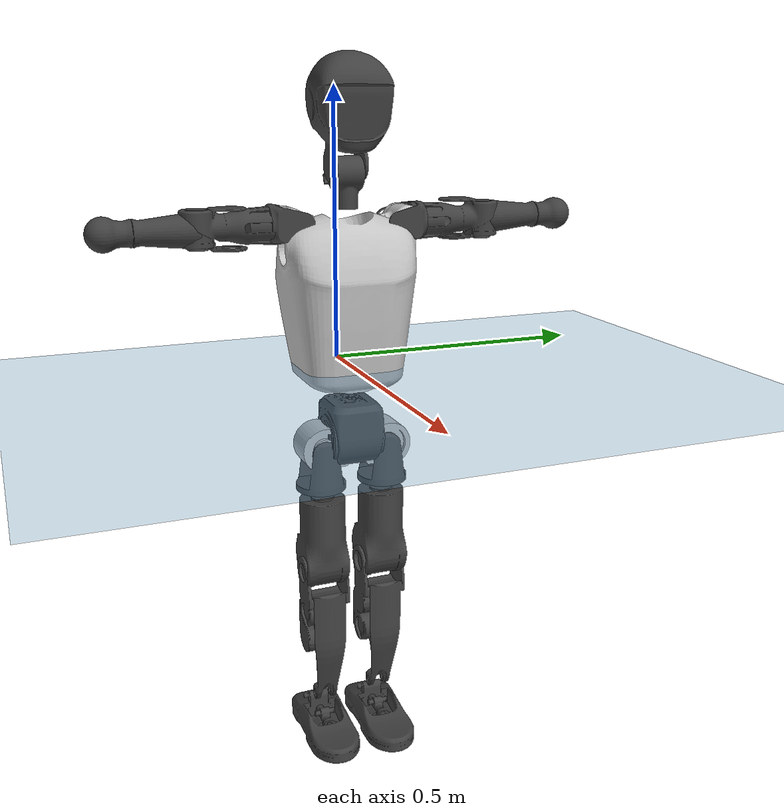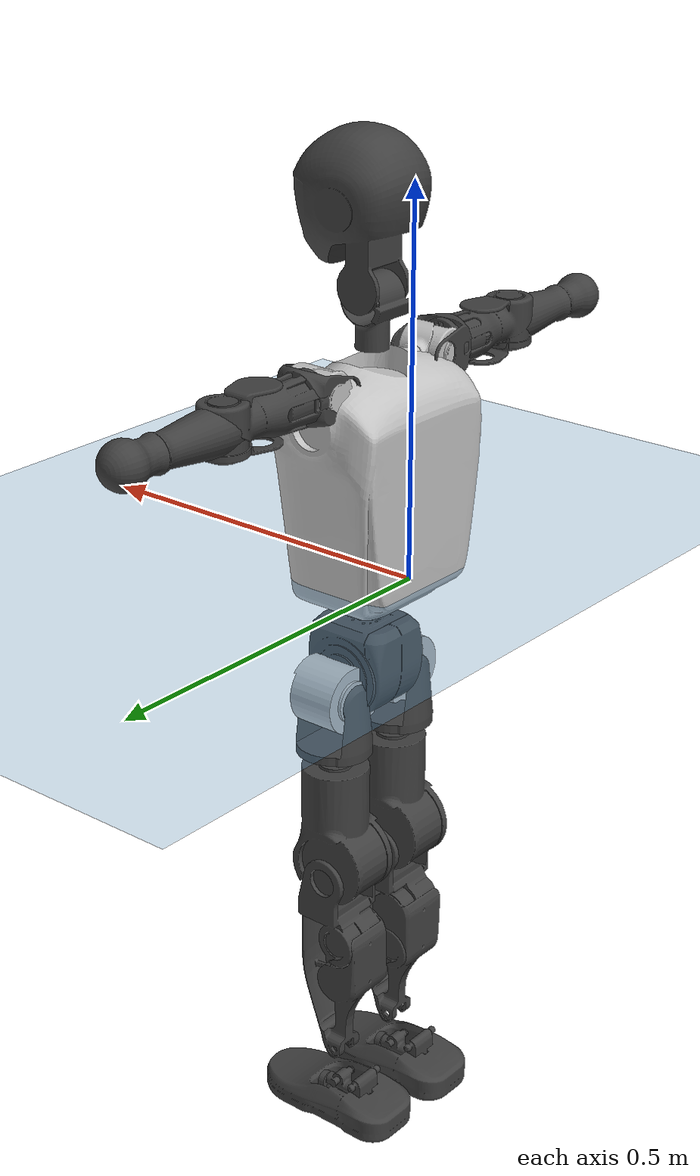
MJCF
<mujoco model="T1">
  <compiler angle="radian" assetdir="assets" balanceinertia="true" inertiafromgeom="false"/>

  <option timestep="0.005" density="1.2" viscosity="2e-05"/>

  <size nkey="1"/>

  <visual>
    <quality shadowsize="8192"/>
    <map shadowclip="0.5"/>
  </visual>

  <default>
    <default class="/">
      <joint armature="0.01" damping="0.01" frictionloss="0.1"/>
      <geom contype="0" conaffinity="0" group="1" solref="-1000 -80"/>
      <site size="0.01 0.005 0.005" group="5"/>
      <general forcelimited="true" biastype="affine" gainprm="25" biasprm="0 -25 -0.6"/>
      <default class="t1">
        <geom rgba="0.25 0.25 0.25 1"/>
        <default class="visual">
          <geom type="mesh" group="2"/>
        </default>
        <default class="collision">
          <geom group="3"/>
        </default>
        <default class="foot">
          <geom size="0.1115 0.05 0.015" type="box" condim="6" group="4" priority="1" solimp="0.015 1 0.015"/>
        </default>
        <default class="reward_collision_sphere">
          <geom group="5" rgba="1 0 0 1"/>
        </default>
      </default>
    </default>
  </default>

  <asset>
    <texture type="skybox" colorspace="auto" name="//unnamed_texture_0" builtin="gradient" rgb1="0.95 0.95 0.95" rgb2="0.95 0.95 0.95" width="100" height="600"/>
    <texture type="2d" colorspace="auto" name="texplane" builtin="checker" rgb1="0.345 0.575 0.748" rgb2="0.345 0.575 0.748" markrgb="1 1 1" width="512" height="512"/>
    <material name="MatPlane" class="/" texture="texplane" texuniform="true" texrepeat="2 2" specular="0.9"/>
    <mesh name="Trunk" class="/" file="Trunk.stl"/>
    <mesh name="H1" class="/" file="H1.stl"/>
    <mesh name="H2" class="/" file="H2.stl"/>
    <mesh name="AL1" class="/" file="AL1.stl"/>
    <mesh name="AL2" class="/" file="AL2.stl"/>
    <mesh name="AL3" class="/" file="AL3.stl"/>
    <mesh name="left_hand_link" class="/" file="left_hand_link.stl"/>
    <mesh name="AR1" class="/" file="AR1.stl"/>
    <mesh name="AR2" class="/" file="AR2.stl"/>
    <mesh name="AR3" class="/" file="AR3.stl"/>
    <mesh name="right_hand_link" class="/" file="right_hand_link.stl"/>
    <mesh name="Waist" class="/" file="Waist.stl"/>
    <mesh name="Hip_Pitch_Left" class="/" file="Hip_Pitch_Left.stl"/>
    <mesh name="Hip_Roll_Left" class="/" file="Hip_Roll_Left.stl"/>
    <mesh name="Hip_Yaw_Left" class="/" file="Hip_Yaw_Left.stl"/>
    <mesh name="Shank_Left" class="/" file="Shank_Left.stl"/>
    <mesh name="Ankle_Cross_Left" class="/" file="Ankle_Cross_Left.stl"/>
    <mesh name="left_foot_link" class="/" file="left_foot_link.stl"/>
    <mesh name="Hip_Pitch_Right" class="/" file="Hip_Pitch_Right.stl"/>
    <mesh name="Hip_Roll_Right" class="/" file="Hip_Roll_Right.stl"/>
    <mesh name="Hip_Yaw_Right" class="/" file="Hip_Yaw_Right.stl"/>
    <mesh name="Shank_Right" class="/" file="Shank_Right.stl"/>
    <mesh name="Ankle_Cross_Right" class="/" file="Ankle_Cross_Right.stl"/>
    <mesh name="right_foot_link" class="/" file="right_foot_link.stl"/>
  </asset>

  <worldbody>
    <geom name="floor" class="/" size="100 100 0.125" type="plane" group="0" material="MatPlane"/>
    <light name="toplight_shadow" class="/" pos="0 0 5" dir="0.0990148 0.0990148 -0.990148" type="directional" ambient="0.04 0.04 0.04" diffuse="0.55 0.55 0.55" specular="0.12 0.12 0.12"/>
    <light name="toplight_fill" class="/" pos="0 0 5" dir="0.0990148 0.0990148 -0.990148" type="directional" castshadow="false" ambient="0.04 0.04 0.04" diffuse="0.3 0.3 0.3" specular="0.08 0.08 0.08"/>
    <body name="trunk" childclass="t1" pos="-0.000369973 0.00224283 5.43401e-05" quat="1 3.55484e-05 3.2202e-05 0.000187411">
      <inertial pos="0.0521013 -0.00142848 0.126031" quat="0.99994 0.0017578 -0.00850096 -0.00661484" mass="9.19315" diaginertia="0.0862241 0.00544075 0.12673"/>
      <joint name="//unnamed_joint_0" type="free" armature="0" damping="0" frictionloss="0"/>
      <geom name="//unnamed_geom_1" class="visual" rgba="0.76 0.76 0.76 1" mesh="Trunk"/>
      <geom name="//unnamed_geom_2" class="collision" size="0.0694636 0.0926182 0.138927" pos="0.0594545 0 0.143016" type="box"/>
      <geom name="//unnamed_geom_3" class="reward_collision_sphere" size="0.106511" pos="0.0594545 0 0.11918"/>
      <geom name="//unnamed_geom_4" class="reward_collision_sphere" size="0.0138927" pos="0.0594545 0.0506459 0"/>
      <geom name="//unnamed_geom_5" class="reward_collision_sphere" size="0.0138927" pos="0.0594545 -0.0506459 0"/>
      <geom name="//unnamed_geom_6" class="reward_collision_sphere" size="0.0138927" pos="0.0594545 0.0637543 0.214524"/>
      <geom name="//unnamed_geom_7" class="reward_collision_sphere" size="0.0138927" pos="0.0594545 -0.0637543 0.214524"/>
      <site name="imu" pos="-0.000217895 -0.00604645 -0.0122348" size="0.00926182"/>
      <camera name="track" pos="0 -1.19167 0" quat="0.707107 0.707107 0 0" mode="trackcom"/>
      <camera name="ego_camera" pos="0.120891 0 0.500557" quat="-0.5 -0.5 0.5 0.5"/>
      <body name="H1" pos="0.0619191 -0.00199099 0.287097" quat="1 0.000144968 -0.000383076 -0.000285672">
        <inertial pos="0.000326263 -0.00361764 0.0707878" quat="0.764163 -0.000221832 0.00388163 0.645011" mass="0.348223" diaginertia="0.00021819 1.66741e-05 0.000337197"/>
        <joint name="AAHead_yaw" pos="0 0 0" axis="0.0131614 0.00277931 0.99991" range="-1.52079 1.51567" armature="0.00921421" damping="0.00249691" frictionloss="0.0872109"/>
        <geom name="//unnamed_geom_8" class="visual" mesh="H1"/>
        <body name="H2" pos="-0.000832922 -5.44861e-06 0.0777925" quat="0.999998 -0.000635178 -0.000121175 -0.00172775">
          <inertial pos="0.00488999 0.001298 0.117612" quat="0.988187 0.103312 -0.077382 -0.0826122" mass="0.502243" diaginertia="0.00193591 0.000139622 0.00428862"/>
          <joint name="Head_pitch" pos="0 0 0" axis="0.000156107 -1 -0.000811775" range="-1.17219 0.33228" armature="0.00900745" damping="0.0132148" frictionloss="0.0901979"/>
          <geom name="//unnamed_geom_9" class="visual" mesh="H2"/>
          <geom name="//unnamed_geom_10" class="collision" size="0.0740945" pos="0.00990908 0 0.131098"/>
          <geom name="//unnamed_geom_11" class="reward_collision_sphere" size="0.0833563" pos="0.0198182 0 0.11918"/>
        </body>
      </body>
      <body name="AL1" pos="0.056915 0.0622312 0.260244" quat="1 3.44762e-06 0.000471312 6.14302e-05">
        <inertial pos="0.00173826 0.0251351 -0.00024385" quat="0.506377 0.489421 -0.50313 0.500909" mass="0.422913" diaginertia="0.00126654 9.62706e-05 0.000700479"/>
        <joint name="Left_Shoulder_Pitch" pos="0 0 0" axis="-0.00895118 0.999959 0.00122144" range="-3.35335 1.20708" armature="0.00889829" damping="0" frictionloss="0.0822552"/>
        <geom name="//unnamed_geom_12" class="visual" rgba="0.76 0.76 0.76 1" mesh="AL1"/>
        <body name="AL2" pos="-0.000252289 0.0270292 0.000644145" quat="1 -0.000675242 0.000488852 -0.000209214">
          <inertial pos="0.000635655 0.0243703 -0.000223342" quat="0.486901 0.505001 -0.492325 0.515283" mass="0.130036" diaginertia="0.000393851 2.61414e-05 0.000444127"/>
          <joint name="Left_Shoulder_Roll" pos="0 0 0" axis="-0.999998 0.000654809 -0.00185821" range="-1.58156 1.69282" armature="0.00971065" damping="0.0072584" frictionloss="0.0856472"/>
          <geom name="//unnamed_geom_13" class="visual" mesh="AL2"/>
          <body name="AL3" pos="-0.000791537 0.0336672 -0.00151472" quat="1 0.000308527 0.000473152 0.00032744">
            <inertial pos="-0.00229641 0.0530315 0.00177959" quat="0.695725 0.718255 -0.00718493 -0.00505881" mass="0.774112" diaginertia="0.0113871 0.000876839 0.00143606"/>
            <joint name="Left_Elbow_Pitch" pos="0 0 0" axis="-0.00214224 -0.9999 -0.014006" stiffness="0.00761723" range="-2.2779 2.21057" armature="0.00894942" damping="0.00972946" frictionloss="0.0788954"/>
            <geom name="//unnamed_geom_14" class="visual" mesh="AL3"/>
            <geom name="//unnamed_geom_15" class="collision" size="0.0277854 0.0694636" pos="0 0.0297917 0" quat="0.707105 0.707108 0 0" type="cylinder"/>
            <geom name="//unnamed_geom_16" class="reward_collision_sphere" size="0.0333425"/>
            <body name="left_hand_link" pos="-0.00117569 0.0900681 0.00159219" quat="0.999999 0.000863951 -0.000751203 0.000747361">
              <inertial pos="-0.00238463 0.0656667 0.000633986" quat="0.704585 0.709524 -0.00687397 0.00938905" mass="0.251799" diaginertia="0.00750482 0.000605269 0.000519863"/>
              <joint name="Left_Elbow_Yaw" pos="0 0 0" axis="0.00372795 0.00160825 0.999992" stiffness="0.011092" range="-2.48126 -0.057036" armature="0.00945557" damping="0.0129654" frictionloss="0.10135"/>
              <geom name="//unnamed_geom_17" class="visual" mesh="left_hand_link"/>
              <geom name="//unnamed_geom_18" class="collision" size="0.0277854 0.0810409" pos="0 0.0774585 0" quat="0.707105 0.707108 0 0" type="cylinder"/>
              <geom name="//unnamed_geom_19" class="reward_collision_sphere" size="0.0463091"/>
              <geom name="//unnamed_geom_20" class="reward_collision_sphere" size="0.0324164" pos="0 0.0655418 0"/>
              <geom name="//unnamed_geom_21" class="reward_collision_sphere" size="0.0324164" pos="0 0.128104 0"/>
            </body>
          </body>
        </body>
      </body>
      <body name="AR1" pos="0.0540981 -0.0634123 0.262627" quat="1 1.16358e-05 0.000418126 -1.41107e-06">
        <inertial pos="-0.00150937 -0.0258419 -0.000552716" quat="0.503937 0.485445 -0.50678 0.503552" mass="0.429704" diaginertia="0.0013122 9.46542e-05 0.000706201"/>
        <joint name="Right_Shoulder_Pitch" pos="0 0 0" axis="-0.00271464 -0.999872 0.015782" range="-1.23047 3.2684" armature="0.00825621" damping="0.0168501" frictionloss="0.103869"/>
        <geom name="//unnamed_geom_22" class="visual" rgba="0.76 0.76 0.76 1" mesh="AR1"/>
        <body name="AR2" pos="-0.00340464 -0.0263406 0.00227736" quat="1 0.000114498 0.000173722 0.000102455">
          <inertial pos="0.00399853 -0.0232363 0.00237644" quat="0.502739 0.487291 -0.521267 0.487937" mass="0.120529" diaginertia="0.000377196 2.46712e-05 0.000411965"/>
          <joint name="Right_Shoulder_Roll" pos="0 0 0" axis="-0.999995 -0.00147297 -0.00268468" stiffness="0.00218163" range="-1.75954 1.57627" armature="0.00830554" damping="0.00611746" frictionloss="0.090369"/>
          <geom name="//unnamed_geom_23" class="visual" mesh="AR2"/>
          <body name="AR3" pos="0.0010182 -0.0338701 -0.00226807" quat="1 8.62874e-05 0.000875233 -0.00012264">
            <inertial pos="0.000570299 -0.0510085 0.000122376" quat="0.711108 0.703006 0.0100773 0.00263912" mass="0.767766" diaginertia="0.0116375 0.000915226 0.00143004"/>
            <joint name="Right_Elbow_Pitch" pos="0 0 0" axis="0.00239686 0.999997 0.000121514" stiffness="0.021371" range="-2.268 2.2876" armature="0.00895666" damping="0" frictionloss="0.0952822"/>
            <geom name="//unnamed_geom_24" class="visual" mesh="AR3"/>
            <geom name="//unnamed_geom_25" class="collision" size="0.0277854 0.0694636" pos="0 -0.0297917 0" quat="0.707105 0.707108 0 0" type="cylinder"/>
            <geom name="//unnamed_geom_26" class="reward_collision_sphere" size="0.0333425"/>
            <body name="right_hand_link" pos="0.000673207 -0.0891123 -0.00318067" quat="1 8.56675e-06 -9.57351e-06 -1.4035e-05">
              <inertial pos="-0.00213136 -0.0660822 0.00348918" quat="0.707209 0.706986 1.86407e-05 0.00516729" mass="0.266039" diaginertia="0.00784467 0.000587955 0.000505224"/>
              <joint name="Right_Elbow_Yaw" pos="0 0 0" axis="-0.000584856 0.00314461 0.999995" range="0.0502467 2.41719" armature="0.00839982" damping="0.00123552" frictionloss="0.0879929"/>
              <geom name="//unnamed_geom_27" class="visual" mesh="right_hand_link"/>
              <geom name="//unnamed_geom_28" class="collision" size="0.0277854 0.0810409" pos="0 -0.0774585 0" quat="0.707105 0.707108 0 0" type="cylinder"/>
              <geom name="//unnamed_geom_29" class="reward_collision_sphere" size="0.0463091"/>
              <geom name="//unnamed_geom_30" class="reward_collision_sphere" size="0.0324164" pos="0 -0.0655418 0"/>
              <geom name="//unnamed_geom_31" class="reward_collision_sphere" size="0.0324164" pos="0 -0.128104 0"/>
            </body>
          </body>
        </body>
      </body>
      <body name="Waist" pos="0.0662044 0.00111596 -0.134978" quat="1 1.62234e-05 -0.000119435 8.77413e-05">
        <inertial pos="0.00414623 -0.000200522 0.0109397" quat="0.983603 -9.50311e-05 -0.180309 0.00376069" mass="2.14881" diaginertia="0.00526485 0.000416212 0.011554"/>
        <joint name="Waist" pos="0 0 0" axis="0.00332291 0.00506365 0.999982" range="-1.55567 1.57855" armature="0.0105733" damping="0" frictionloss="0.103071"/>
        <geom name="//unnamed_geom_32" class="visual" mesh="Waist"/>
        <body name="Hip_Pitch_Left" pos="0.00341221 0.0651028 -0.000611631" quat="1 9.15451e-05 -0.000107662 -3.42622e-05">
          <inertial pos="0.000941251 -0.00757834 -0.0215007" quat="0.97723 0.211801 0.0126937 0.000184537" mass="0.812306" diaginertia="0.00162913 0.000102811 0.00285626"/>
          <joint name="Left_Hip_Pitch" pos="0 0 0" axis="-0.00537094 0.999853 0.0162687" stiffness="0.0130709" range="-1.84238 1.62347" armature="0.00802286" damping="0.01406" frictionloss="0.104249"/>
          <geom name="//unnamed_geom_33" class="visual" rgba="0.76 0.76 0.76 1" mesh="Hip_Pitch_Left"/>
          <body name="Hip_Roll_Left" pos="-0.00157235 -0.00138756 -0.0227099" quat="0.999998 -0.00157645 -0.000822467 0.00036802">
            <inertial pos="0.00288448 0.000315838 -0.0614232" quat="0.715776 -0.0150324 -0.000805772 0.698168" mass="0.315898" diaginertia="0.00172968 0.000120004 0.00123076"/>
            <joint name="Left_Hip_Roll" pos="0 0 0" axis="-0.999835 -0.0173498 -0.00536794" range="-1.57375 0.164426" armature="0.00859055" damping="0.0206819" frictionloss="0.0888554"/>
            <geom name="//unnamed_geom_34" class="visual" mesh="Hip_Roll_Left"/>
            <geom name="//unnamed_geom_35" class="reward_collision_sphere" size="0.05094"/>
            <body name="Hip_Yaw_Left" pos="-0.00409099 -0.000681461 -0.0988419" quat="0.999999 -0.000748202 -4.47734e-05 0.00074071">
              <inertial pos="-0.00461778 -0.00280123 -0.108251" quat="0.700606 -0.0310174 -0.0231177 0.712498" mass="1.65955" diaginertia="0.0235968 0.00183596 0.00603456"/>
              <joint name="Left_Hip_Yaw" pos="0 0 0" axis="0.00908191 0.00236277 -0.999956" range="-0.958534 1.0529" armature="0.0100006" damping="0" frictionloss="0.10231"/>
              <geom name="//unnamed_geom_36" class="visual" mesh="Hip_Yaw_Left"/>
              <geom name="//unnamed_geom_37" class="collision" size="0.0463091 0.0740945" type="cylinder"/>
              <body name="Shank_Left" pos="-0.0106536 -0.00123435 -0.157307" quat="1 -7.71567e-05 0.00019609 7.28144e-05">
                <inertial pos="-0.00654518 0.00128475 -0.147422" quat="0.998152 0.0044817 -0.0267852 0.0543589" mass="1.37966" diaginertia="0.0330596 0.00264536 0.00474359"/>
                <joint name="Left_Knee_Pitch" pos="0 0 0" axis="0.000433465 0.999998 0.00176096" stiffness="0.00449469" range="0.0320597 2.38675" armature="0.00880777" damping="0.0138637" frictionloss="0.0988742"/>
                <geom name="//unnamed_geom_38" class="visual" mesh="Shank_Left"/>
                <geom name="//unnamed_geom_39" class="collision" size="0.0463091 0.0694636" pos="0 0 -0.143016" type="cylinder"/>
                <geom name="//unnamed_geom_40" class="reward_collision_sphere" size="0.0602018"/>
                <body name="Ankle_Cross_Left" pos="0.000373788 0.000431859 -0.336343" quat="1 -0.000586448 0.000674041 -0.000298144">
                  <inertial pos="-0.00324076 0.00261455 -0.0113605" quat="0.445407 0.551567 0.550722 0.440559" mass="0.0549838" diaginertia="2.75221e-05 1.80899e-06 2.64223e-05"/>
                  <joint name="Left_Ankle_Pitch" pos="0 0 0" axis="0.00335529 0.999929 0.0114418" stiffness="0.00225843" range="-0.924106 0.402028" armature="0.00941269" damping="0.0174539" frictionloss="0.0903693"/>
                  <geom name="//unnamed_geom_41" class="visual" mesh="Ankle_Cross_Left"/>
                  <body name="left_foot_link" pos="0.000448071 0.002221 -0.0158005" quat="0.999999 -0.000971038 -0.000380574 -0.000160603">
                    <inertial pos="0.00225814 -0.000297027 -0.0102068" quat="0.00161581 0.616763 0.00146456 0.787146" mass="0.575774" diaginertia="0.00253656 0.000188978 0.00557704"/>
                    <joint name="Left_Ankle_Roll" pos="0 0 0" axis="-0.999974 -0.000228351 -0.00717039" stiffness="0.00864025" range="-0.494857 0.394877" armature="0.00791322" damping="0.00985371" frictionloss="0.104577"/>
                    <geom name="//unnamed_geom_42" class="visual" mesh="left_foot_link"/>
                    <geom name="left_foot" class="foot" size="0.095273 0.051813 0.0127587" pos="0.00990908 0 -0.017877"/>
                    <geom name="//unnamed_geom_44" class="reward_collision_sphere" size="0.0481614" pos="0.00990908 0 -0.017877"/>
                    <geom name="//unnamed_geom_45" class="reward_collision_sphere" size="0.0277854" pos="0.0941362 -0.0137042 -0.017877"/>
                    <geom name="//unnamed_geom_46" class="reward_collision_sphere" size="0.0277854" pos="-0.0693635 -0.0137042 -0.017877"/>
                    <site name="left_foot" class="foot" pos="0.00990908 0 -0.017877" size="0.00926182"/>
                  </body>
                </body>
              </body>
            </body>
          </body>
        </body>
        <body name="Hip_Pitch_Right" pos="-0.000781875 -0.0604587 0.000417092" quat="0.999999 -0.000728125 -0.000440878 0.000704645">
          <inertial pos="0.00181653 0.00631596 -0.0216206" quat="0.973566 -0.227205 0.0229693 -0.00439078" mass="0.765728" diaginertia="0.00169777 0.000107539 0.00293064"/>
          <joint name="Right_Hip_Pitch" pos="0 0 0" axis="-0.0101133 -0.999879 0.0118041" range="-1.52081 1.76672" armature="0.00738764" damping="0.0157976" frictionloss="0.0831983"/>
          <geom name="//unnamed_geom_47" class="visual" rgba="0.76 0.76 0.76 1" mesh="Hip_Pitch_Right"/>
          <body name="Hip_Roll_Right" pos="0.0013245 -0.00115279 -0.0269994" quat="0.999999 0.000920939 0.000330386 -0.000323863">
            <inertial pos="0.000891423 0.00226146 -0.0642297" quat="0.708491 -0.0132131 -0.00398927 0.705585" mass="0.329388" diaginertia="0.00178201 0.000119091 0.00130148"/>
            <joint name="Right_Hip_Roll" pos="0 0 0" axis="-0.999821 0.00613186 -0.0178957" range="-0.220218 1.56799" armature="0.0095632" damping="0.0202638" frictionloss="0.0928951"/>
            <geom name="//unnamed_geom_48" class="visual" mesh="Hip_Roll_Right"/>
            <geom name="//unnamed_geom_49" class="reward_collision_sphere" size="0.05094"/>
            <body name="Hip_Yaw_Right" pos="-0.00022705 0.00216549 -0.0985462" quat="1 -3.25209e-05 2.23788e-05 -3.4872e-05">
              <inertial pos="-0.00727356 0.0034403 -0.10414" quat="0.705487 -0.0311475 -0.0344126 0.707201" mass="1.84221" diaginertia="0.0260441 0.00201008 0.00632178"/>
              <joint name="Right_Hip_Yaw" pos="0 0 0" axis="-0.0084943 0.000248844 -0.999964" range="-1.03865 0.990351" armature="0.00822566" damping="0.021209" frictionloss="0.0913627"/>
              <geom name="//unnamed_geom_50" class="visual" mesh="Hip_Yaw_Right"/>
              <geom name="//unnamed_geom_51" class="collision" size="0.0463091 0.0740945" type="cylinder"/>
              <body name="Shank_Right" pos="-0.0122308 0.00219698 -0.158785" quat="1 -5.47271e-05 0.0001672 -5.19597e-05">
                <inertial pos="-0.00503451 0.000109767 -0.148555" quat="0.999488 0.00820847 -0.0205641 -0.0231135" mass="1.43961" diaginertia="0.0354946 0.00255339 0.00475951"/>
                <joint name="Right_Knee_Pitch" pos="0 0 0" axis="0.0138588 -0.999852 -0.0102366" stiffness="0.00808502" range="-2.30103 0.0429283" armature="0.00925966" damping="0.0181255" frictionloss="0.0904958"/>
                <geom name="//unnamed_geom_52" class="visual" mesh="Shank_Right"/>
                <geom name="//unnamed_geom_53" class="collision" size="0.0463091 0.0694636" pos="0 0 -0.143016" type="cylinder"/>
                <geom name="//unnamed_geom_54" class="reward_collision_sphere" size="0.0602018"/>
                <body name="Ankle_Cross_Right" pos="-0.00293794 -0.000193302 -0.332377" quat="1 0.000153911 -8.51562e-05 -0.000154821">
                  <inertial pos="-0.00628708 -0.000813587 -0.00732192" quat="0.442733 0.5584 0.551938 0.433061" mass="0.0594559" diaginertia="2.93973e-05 1.95547e-06 2.86418e-05"/>
                  <joint name="Right_Ankle_Pitch" pos="0 0 0" axis="0.00289702 -0.999992 -0.00279808" stiffness="0.00382363" range="-0.33819 0.918999" armature="0.00911061" damping="0.00491128" frictionloss="0.0941821"/>
                  <geom name="//unnamed_geom_55" class="visual" mesh="Ankle_Cross_Right"/>
                  <body name="right_foot_link" pos="-0.000956074 -0.000167641 -0.0130744" quat="0.999999 -0.000567341 7.25098e-05 0.00106883">
                    <inertial pos="0.00350708 -0.000507664 -0.0111609" quat="-0.000305553 0.619325 -0.0019174 0.785133" mass="0.544119" diaginertia="0.00250099 0.000173017 0.00505134"/>
                    <joint name="Right_Ankle_Roll" pos="0 0 0" axis="-1 0.000114973 0.00065181" stiffness="0.000356501" range="-0.486131 0.453044" armature="0.0102358" damping="0" frictionloss="0.0907756"/>
                    <geom name="//unnamed_geom_56" class="visual" mesh="right_foot_link"/>
                    <geom name="right_foot" class="foot" size="0.100268 0.0465968 0.0144716" pos="0.00990908 0 -0.017877"/>
                    <geom name="//unnamed_geom_58" class="reward_collision_sphere" size="0.0370473"/>
                    <geom name="//unnamed_geom_59" class="reward_collision_sphere" size="0.0277854" pos="0.00990908 0 -0.017877"/>
                    <geom name="//unnamed_geom_60" class="reward_collision_sphere" size="0.0277854" pos="0.0941362 0.0137042 -0.017877"/>
                    <geom name="//unnamed_geom_61" class="reward_collision_sphere" size="0.0277854" pos="-0.0693635 0.0137042 -0.017877"/>
                    <site name="right_foot" class="foot" pos="0.00990908 0 -0.017877" size="0.00926182"/>
                  </body>
                </body>
              </body>
            </body>
          </body>
        </body>
      </body>
    </body>
  </worldbody>

  <contact>
    <pair class="/" geom1="floor" geom2="left_foot" name="//unnamed_contact_0"/>
    <pair class="/" geom1="floor" geom2="right_foot" name="//unnamed_contact_1"/>
  </contact>

  <actuator>
    <general name="AAHead_yaw" class="/" joint="AAHead_yaw" forcerange="-6.65989 6.65989" gainprm="24.0288" biasprm="0 -24.0288 -0.528673"/>
    <general name="Head_pitch" class="/" joint="Head_pitch" forcerange="-6.57285 6.57285" gainprm="24.0288" biasprm="0 -24.0288 -0.528673"/>
    <general name="Left_Shoulder_Pitch" class="/" joint="Left_Shoulder_Pitch" forcerange="-15.0234 15.0234" gainprm="24.0288" biasprm="0 -24.0288 -0.528673"/>
    <general name="Left_Shoulder_Roll" class="/" joint="Left_Shoulder_Roll" forcerange="-17.4177 17.4177" gainprm="24.0288" biasprm="0 -24.0288 -0.528673"/>
    <general name="Left_Elbow_Pitch" class="/" joint="Left_Elbow_Pitch" forcerange="-15.5186 15.5186" gainprm="24.0288" biasprm="0 -24.0288 -0.528673"/>
    <general name="Left_Elbow_Yaw" class="/" joint="Left_Elbow_Yaw" forcerange="-16.1054 16.1054" gainprm="24.0288" biasprm="0 -24.0288 -0.528673"/>
    <general name="Right_Shoulder_Pitch" class="/" joint="Right_Shoulder_Pitch" forcerange="-18.4225 18.4225" gainprm="24.0288" biasprm="0 -24.0288 -0.528673"/>
    <general name="Right_Shoulder_Roll" class="/" joint="Right_Shoulder_Roll" forcerange="-17.0834 17.0834" gainprm="24.0288" biasprm="0 -24.0288 -0.528673"/>
    <general name="Right_Elbow_Pitch" class="/" joint="Right_Elbow_Pitch" forcerange="-15.3355 15.3355" gainprm="24.0288" biasprm="0 -24.0288 -0.528673"/>
    <general name="Right_Elbow_Yaw" class="/" joint="Right_Elbow_Yaw" forcerange="-18.2024 18.2024" gainprm="24.0288" biasprm="0 -24.0288 -0.528673"/>
    <general name="Waist" class="/" joint="Waist" forcerange="-25.6864 25.6864" gainprm="24.0288" biasprm="0 -24.0288 -0.528673"/>
    <general name="Left_Hip_Pitch" class="/" joint="Left_Hip_Pitch" forcerange="-37.649 37.649" gainprm="24.0288" biasprm="0 -24.0288 -0.528673"/>
    <general name="Left_Hip_Roll" class="/" joint="Left_Hip_Roll" forcerange="-26.2433 26.2433" gainprm="24.0288" biasprm="0 -24.0288 -0.528673"/>
    <general name="Left_Hip_Yaw" class="/" joint="Left_Hip_Yaw" forcerange="-31.2575 31.2575" gainprm="24.0288" biasprm="0 -24.0288 -0.528673"/>
    <general name="Left_Knee_Pitch" class="/" joint="Left_Knee_Pitch" forcerange="-55.3737 55.3737" gainprm="24.0288" biasprm="0 -24.0288 -0.528673"/>
    <general name="Left_Ankle_Pitch" class="/" joint="Left_Ankle_Pitch" forcerange="-21.4684 21.4684" gainprm="24.0288" biasprm="0 -24.0288 -0.528673"/>
    <general name="Left_Ankle_Roll" class="/" joint="Left_Ankle_Roll" forcerange="-13.6557 13.6557" gainprm="24.0288" biasprm="0 -24.0288 -0.528673"/>
    <general name="Right_Hip_Pitch" class="/" joint="Right_Hip_Pitch" forcerange="-42.6302 42.6302" gainprm="24.0288" biasprm="0 -24.0288 -0.528673"/>
    <general name="Right_Hip_Roll" class="/" joint="Right_Hip_Roll" forcerange="-26.0928 26.0928" gainprm="24.0288" biasprm="0 -24.0288 -0.528673"/>
    <general name="Right_Hip_Yaw" class="/" joint="Right_Hip_Yaw" forcerange="-26.0985 26.0985" gainprm="24.0288" biasprm="0 -24.0288 -0.528673"/>
    <general name="Right_Knee_Pitch" class="/" joint="Right_Knee_Pitch" forcerange="-53.7025 53.7025" gainprm="24.0288" biasprm="0 -24.0288 -0.528673"/>
    <general name="Right_Ankle_Pitch" class="/" joint="Right_Ankle_Pitch" forcerange="-19.492 19.492" gainprm="24.0288" biasprm="0 -24.0288 -0.528673"/>
    <general name="Right_Ankle_Roll" class="/" joint="Right_Ankle_Roll" forcerange="-15.0419 15.0419" gainprm="24.0288" biasprm="0 -24.0288 -0.528673"/>
  </actuator>

  <sensor>
    <gyro site="imu" name="imu_angular_velocity"/>
    <velocimeter site="imu" name="imu_linear_velocity"/>
    <framelinvel objtype="site" objname="left_foot" name="left_foot_global_linear_velocity"/>
    <framelinvel objtype="site" objname="right_foot" name="right_foot_global_linear_velocity"/>
  </sensor>

  <keyframe>
    <key name="home" qpos="0 0 0.6385 1 0 0 0 0 0 0 1.4 0 -0.4 0 -1.4 0 0.4 0 -0.4 0 0 0.8 -0.4 0 0.4 0 0 -0.8 0.4 0"/>
  </keyframe>
</mujoco>
